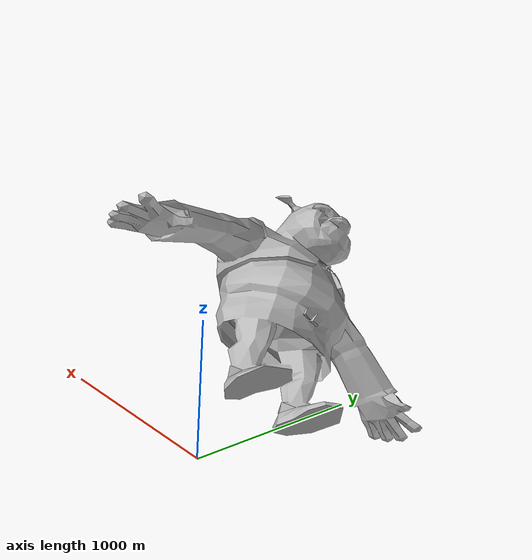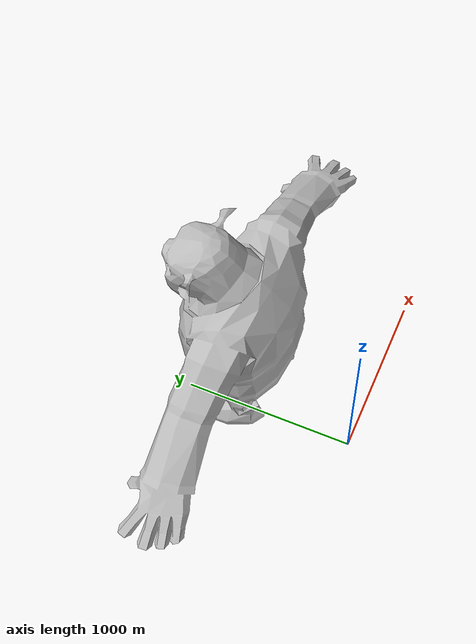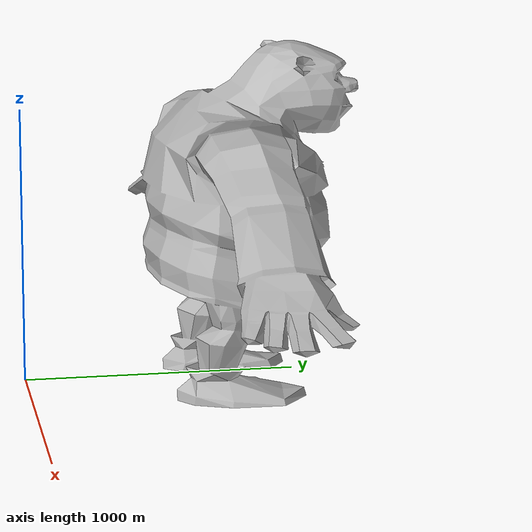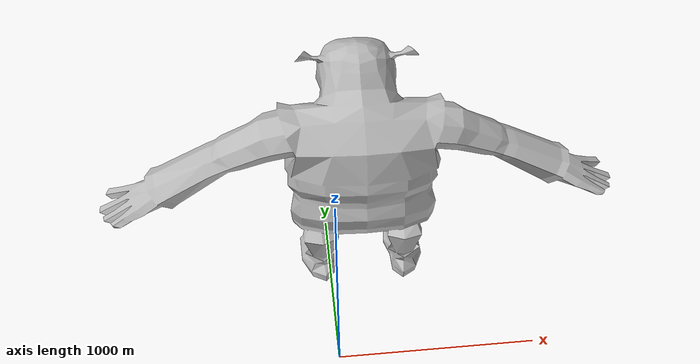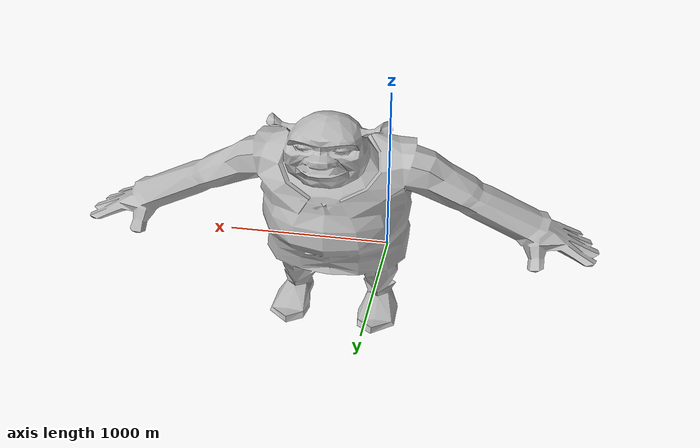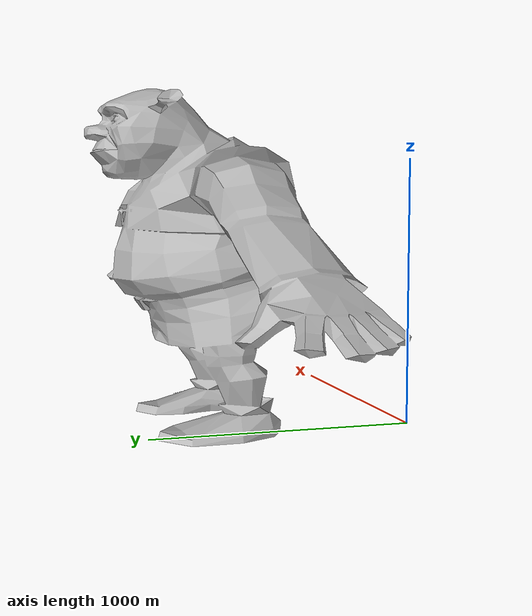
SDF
<?xml version='1.0'?>
<sdf version="1.4">
  <model name="shrek">
    <static>true</static>
    <link name="link">
      <inertial>
        <pose>0 0 0.95 0 0 0</pose>
        <mass>80.0</mass>
        <inertia>
          <ixx>24.88</ixx>
          <ixy>0</ixy>
          <ixz>0</ixz>
          <iyy>25.73</iyy>
          <iyz>0</iyz>
          <izz>2.48</izz>
        </inertia>
      </inertial>
      <collision name="collision">
        <pose>0 0 0.01 0 0 0</pose>
        <geometry>
          <box>
            <size>0.35 0.75 0.02</size>
          </box>
        </geometry>
      </collision>
      <visual name="visual">
        <pose>0 0 -0.02 0 0 0</pose>
        <geometry>
          <mesh>
            <uri>model://shrek/shrek.dae</uri>
          </mesh>
        </geometry>
      </visual>
    </link>
  </model>
</sdf>
